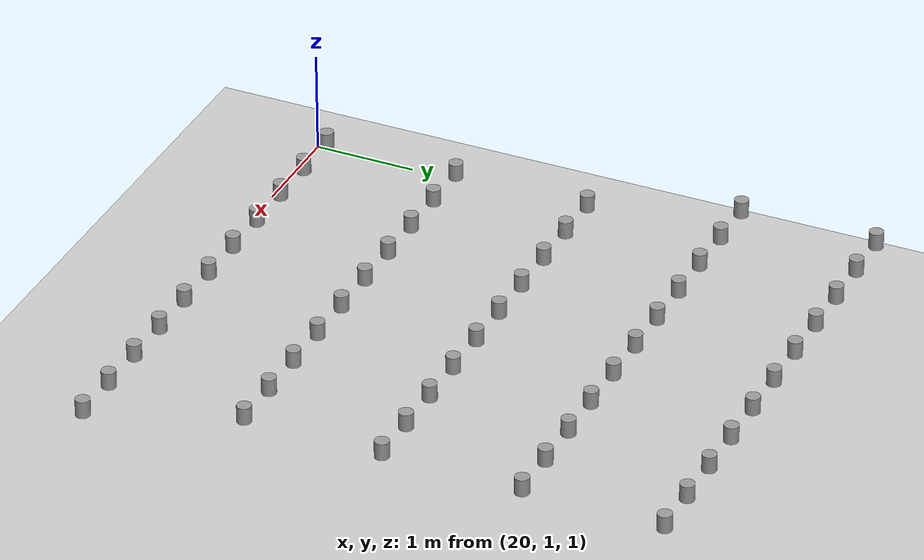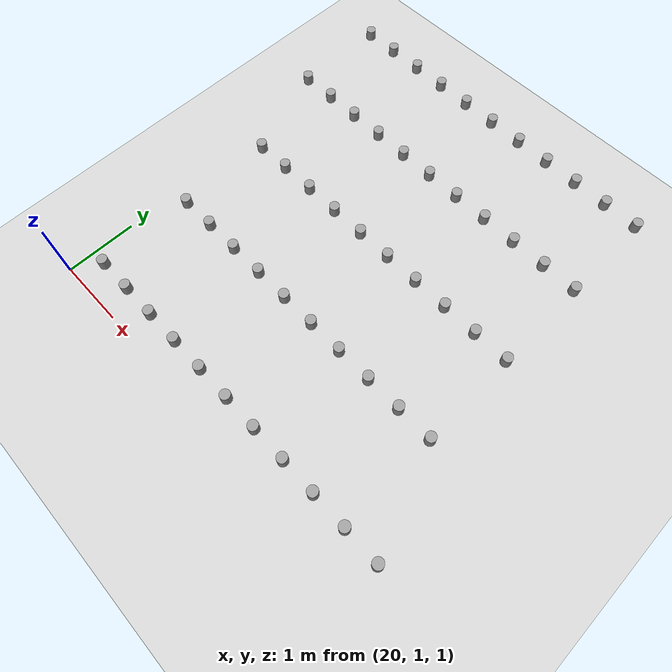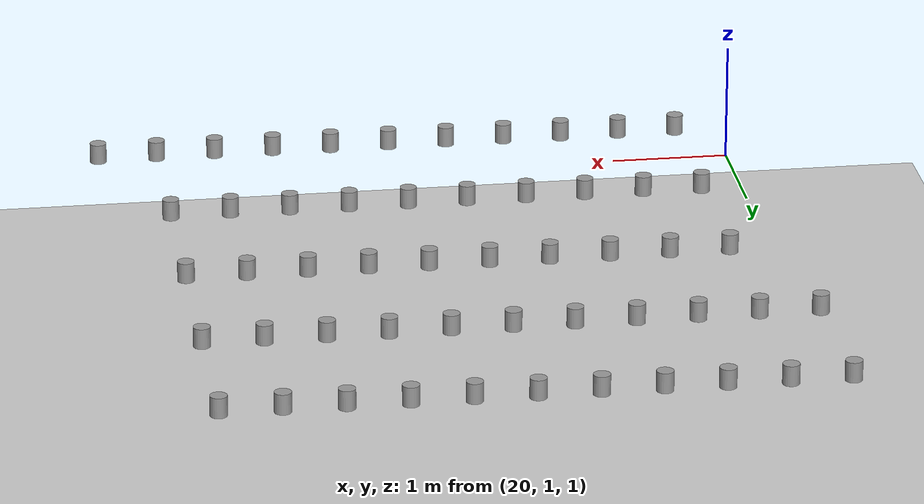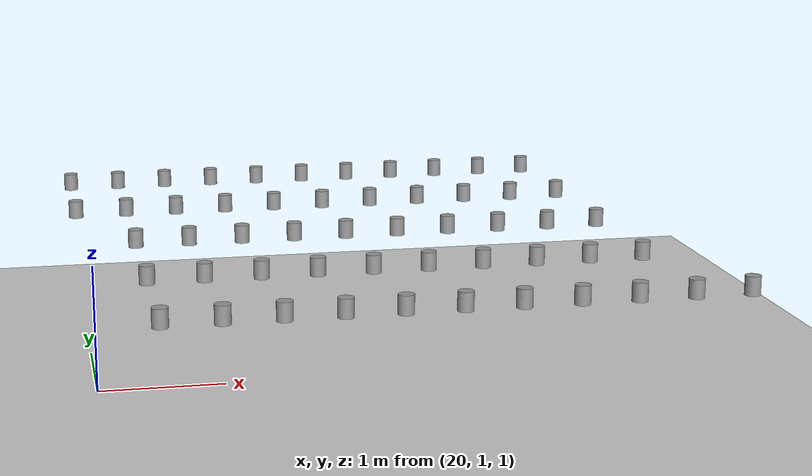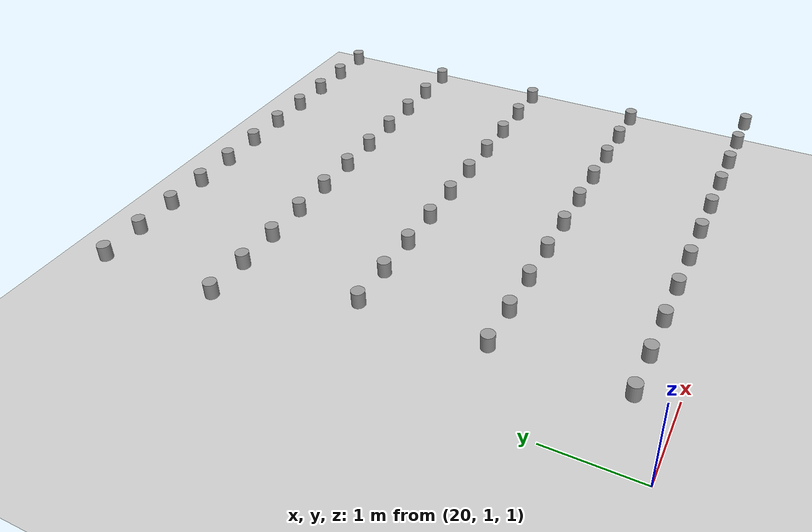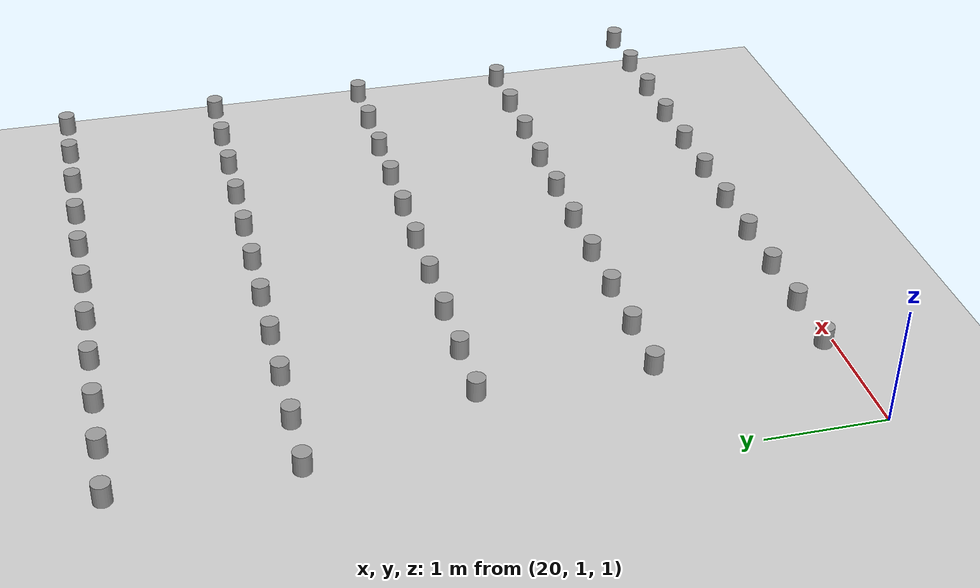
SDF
<sdf version="1.4">
 <world name="default">
  <model name="pot_373">
   <static>1</static>
   <link name="link_0">
    <collision name="collision">
     <geometry><cylinder><length>0.17</length><radius>0.07</radius></cylinder></geometry>
    </collision>
    <visual name="visual">
     <geometry><cylinder><length>0.17</length><radius>0.07</radius></cylinder></geometry>
     <material>
      <script><uri>file://media/materials/scripts/gazebo.material</uri><name>Gazebo/Grey</name></script>
      <emissive>0 0 0 1</emissive>
      <shader type="vertex"><normal_map>__default__</normal_map></shader>
      <specular>0.01 0.01 0.01 1</specular>
      <lighting>1</lighting>
      <ambient>0.1 0.1 0.1 1</ambient>
      <diffuse>0.05 0.05 0.05 1</diffuse>
     </material>
     <cast_shadows>0</cast_shadows>
    </visual>
    <pose>20.024 5.400 1.467 0.0 0.0 0.0</pose>
   </link>
  </model>
  <model name="pot_374">
   <static>1</static>
   <link name="link_0">
    <collision name="collision">
     <geometry><cylinder><length>0.17</length><radius>0.07</radius></cylinder></geometry>
    </collision>
    <visual name="visual">
     <geometry><cylinder><length>0.17</length><radius>0.07</radius></cylinder></geometry>
     <material>
      <script><uri>file://media/materials/scripts/gazebo.material</uri><name>Gazebo/Grey</name></script>
      <emissive>0 0 0 1</emissive>
      <shader type="vertex"><normal_map>__default__</normal_map></shader>
      <specular>0.01 0.01 0.01 1</specular>
      <lighting>1</lighting>
      <ambient>0.1 0.1 0.1 1</ambient>
      <diffuse>0.05 0.05 0.05 1</diffuse>
     </material>
     <cast_shadows>0</cast_shadows>
    </visual>
    <pose>20.024 6.750 1.467 0.0 0.0 0.0</pose>
   </link>
  </model>
  <model name="pot_375">
   <static>1</static>
   <link name="link_0">
    <collision name="collision">
     <geometry><cylinder><length>0.17</length><radius>0.07</radius></cylinder></geometry>
    </collision>
    <visual name="visual">
     <geometry><cylinder><length>0.17</length><radius>0.07</radius></cylinder></geometry>
     <material>
      <script><uri>file://media/materials/scripts/gazebo.material</uri><name>Gazebo/Grey</name></script>
      <emissive>0 0 0 1</emissive>
      <shader type="vertex"><normal_map>__default__</normal_map></shader>
      <specular>0.01 0.01 0.01 1</specular>
      <lighting>1</lighting>
      <ambient>0.1 0.1 0.1 1</ambient>
      <diffuse>0.05 0.05 0.05 1</diffuse>
     </material>
     <cast_shadows>0</cast_shadows>
    </visual>
    <pose>20.524 1.350 1.467 0.0 0.0 0.0</pose>
   </link>
  </model>
  <model name="pot_376">
   <static>1</static>
   <link name="link_0">
    <collision name="collision">
     <geometry><cylinder><length>0.17</length><radius>0.07</radius></cylinder></geometry>
    </collision>
    <visual name="visual">
     <geometry><cylinder><length>0.17</length><radius>0.07</radius></cylinder></geometry>
     <material>
      <script><uri>file://media/materials/scripts/gazebo.material</uri><name>Gazebo/Grey</name></script>
      <emissive>0 0 0 1</emissive>
      <shader type="vertex"><normal_map>__default__</normal_map></shader>
      <specular>0.01 0.01 0.01 1</specular>
      <lighting>1</lighting>
      <ambient>0.1 0.1 0.1 1</ambient>
      <diffuse>0.05 0.05 0.05 1</diffuse>
     </material>
     <cast_shadows>0</cast_shadows>
    </visual>
    <pose>20.524 2.700 1.467 0.0 0.0 0.0</pose>
   </link>
  </model>
  <model name="pot_377">
   <static>1</static>
   <link name="link_0">
    <collision name="collision">
     <geometry><cylinder><length>0.17</length><radius>0.07</radius></cylinder></geometry>
    </collision>
    <visual name="visual">
     <geometry><cylinder><length>0.17</length><radius>0.07</radius></cylinder></geometry>
     <material>
      <script><uri>file://media/materials/scripts/gazebo.material</uri><name>Gazebo/Grey</name></script>
      <emissive>0 0 0 1</emissive>
      <shader type="vertex"><normal_map>__default__</normal_map></shader>
      <specular>0.01 0.01 0.01 1</specular>
      <lighting>1</lighting>
      <ambient>0.1 0.1 0.1 1</ambient>
      <diffuse>0.05 0.05 0.05 1</diffuse>
     </material>
     <cast_shadows>0</cast_shadows>
    </visual>
    <pose>20.524 4.050 1.467 0.0 0.0 0.0</pose>
   </link>
  </model>
  <model name="pot_378">
   <static>1</static>
   <link name="link_0">
    <collision name="collision">
     <geometry><cylinder><length>0.17</length><radius>0.07</radius></cylinder></geometry>
    </collision>
    <visual name="visual">
     <geometry><cylinder><length>0.17</length><radius>0.07</radius></cylinder></geometry>
     <material>
      <script><uri>file://media/materials/scripts/gazebo.material</uri><name>Gazebo/Grey</name></script>
      <emissive>0 0 0 1</emissive>
      <shader type="vertex"><normal_map>__default__</normal_map></shader>
      <specular>0.01 0.01 0.01 1</specular>
      <lighting>1</lighting>
      <ambient>0.1 0.1 0.1 1</ambient>
      <diffuse>0.05 0.05 0.05 1</diffuse>
     </material>
     <cast_shadows>0</cast_shadows>
    </visual>
    <pose>20.524 5.400 1.467 0.0 0.0 0.0</pose>
   </link>
  </model>
  <model name="pot_379">
   <static>1</static>
   <link name="link_0">
    <collision name="collision">
     <geometry><cylinder><length>0.17</length><radius>0.07</radius></cylinder></geometry>
    </collision>
    <visual name="visual">
     <geometry><cylinder><length>0.17</length><radius>0.07</radius></cylinder></geometry>
     <material>
      <script><uri>file://media/materials/scripts/gazebo.material</uri><name>Gazebo/Grey</name></script>
      <emissive>0 0 0 1</emissive>
      <shader type="vertex"><normal_map>__default__</normal_map></shader>
      <specular>0.01 0.01 0.01 1</specular>
      <lighting>1</lighting>
      <ambient>0.1 0.1 0.1 1</ambient>
      <diffuse>0.05 0.05 0.05 1</diffuse>
     </material>
     <cast_shadows>0</cast_shadows>
    </visual>
    <pose>20.524 6.750 1.467 0.0 0.0 0.0</pose>
   </link>
  </model>
  <model name="pot_380">
   <static>1</static>
   <link name="link_0">
    <collision name="collision">
     <geometry><cylinder><length>0.17</length><radius>0.07</radius></cylinder></geometry>
    </collision>
    <visual name="visual">
     <geometry><cylinder><length>0.17</length><radius>0.07</radius></cylinder></geometry>
     <material>
      <script><uri>file://media/materials/scripts/gazebo.material</uri><name>Gazebo/Grey</name></script>
      <emissive>0 0 0 1</emissive>
      <shader type="vertex"><normal_map>__default__</normal_map></shader>
      <specular>0.01 0.01 0.01 1</specular>
      <lighting>1</lighting>
      <ambient>0.1 0.1 0.1 1</ambient>
      <diffuse>0.05 0.05 0.05 1</diffuse>
     </material>
     <cast_shadows>0</cast_shadows>
    </visual>
    <pose>21.024 1.350 1.467 0.0 0.0 0.0</pose>
   </link>
  </model>
  <model name="pot_381">
   <static>1</static>
   <link name="link_0">
    <collision name="collision">
     <geometry><cylinder><length>0.17</length><radius>0.07</radius></cylinder></geometry>
    </collision>
    <visual name="visual">
     <geometry><cylinder><length>0.17</length><radius>0.07</radius></cylinder></geometry>
     <material>
      <script><uri>file://media/materials/scripts/gazebo.material</uri><name>Gazebo/Grey</name></script>
      <emissive>0 0 0 1</emissive>
      <shader type="vertex"><normal_map>__default__</normal_map></shader>
      <specular>0.01 0.01 0.01 1</specular>
      <lighting>1</lighting>
      <ambient>0.1 0.1 0.1 1</ambient>
      <diffuse>0.05 0.05 0.05 1</diffuse>
     </material>
     <cast_shadows>0</cast_shadows>
    </visual>
    <pose>21.024 2.700 1.467 0.0 0.0 0.0</pose>
   </link>
  </model>
  <model name="pot_382">
   <static>1</static>
   <link name="link_0">
    <collision name="collision">
     <geometry><cylinder><length>0.17</length><radius>0.07</radius></cylinder></geometry>
    </collision>
    <visual name="visual">
     <geometry><cylinder><length>0.17</length><radius>0.07</radius></cylinder></geometry>
     <material>
      <script><uri>file://media/materials/scripts/gazebo.material</uri><name>Gazebo/Grey</name></script>
      <emissive>0 0 0 1</emissive>
      <shader type="vertex"><normal_map>__default__</normal_map></shader>
      <specular>0.01 0.01 0.01 1</specular>
      <lighting>1</lighting>
      <ambient>0.1 0.1 0.1 1</ambient>
      <diffuse>0.05 0.05 0.05 1</diffuse>
     </material>
     <cast_shadows>0</cast_shadows>
    </visual>
    <pose>21.024 4.050 1.467 0.0 0.0 0.0</pose>
   </link>
  </model>
  <model name="pot_383">
   <static>1</static>
   <link name="link_0">
    <collision name="collision">
     <geometry><cylinder><length>0.17</length><radius>0.07</radius></cylinder></geometry>
    </collision>
    <visual name="visual">
     <geometry><cylinder><length>0.17</length><radius>0.07</radius></cylinder></geometry>
     <material>
      <script><uri>file://media/materials/scripts/gazebo.material</uri><name>Gazebo/Grey</name></script>
      <emissive>0 0 0 1</emissive>
      <shader type="vertex"><normal_map>__default__</normal_map></shader>
      <specular>0.01 0.01 0.01 1</specular>
      <lighting>1</lighting>
      <ambient>0.1 0.1 0.1 1</ambient>
      <diffuse>0.05 0.05 0.05 1</diffuse>
     </material>
     <cast_shadows>0</cast_shadows>
    </visual>
    <pose>21.024 5.400 1.467 0.0 0.0 0.0</pose>
   </link>
  </model>
  <model name="pot_384">
   <static>1</static>
   <link name="link_0">
    <collision name="collision">
     <geometry><cylinder><length>0.17</length><radius>0.07</radius></cylinder></geometry>
    </collision>
    <visual name="visual">
     <geometry><cylinder><length>0.17</length><radius>0.07</radius></cylinder></geometry>
     <material>
      <script><uri>file://media/materials/scripts/gazebo.material</uri><name>Gazebo/Grey</name></script>
      <emissive>0 0 0 1</emissive>
      <shader type="vertex"><normal_map>__default__</normal_map></shader>
      <specular>0.01 0.01 0.01 1</specular>
      <lighting>1</lighting>
      <ambient>0.1 0.1 0.1 1</ambient>
      <diffuse>0.05 0.05 0.05 1</diffuse>
     </material>
     <cast_shadows>0</cast_shadows>
    </visual>
    <pose>21.024 6.750 1.467 0.0 0.0 0.0</pose>
   </link>
  </model>
  <model name="pot_385">
   <static>1</static>
   <link name="link_0">
    <collision name="collision">
     <geometry><cylinder><length>0.17</length><radius>0.07</radius></cylinder></geometry>
    </collision>
    <visual name="visual">
     <geometry><cylinder><length>0.17</length><radius>0.07</radius></cylinder></geometry>
     <material>
      <script><uri>file://media/materials/scripts/gazebo.material</uri><name>Gazebo/Grey</name></script>
      <emissive>0 0 0 1</emissive>
      <shader type="vertex"><normal_map>__default__</normal_map></shader>
      <specular>0.01 0.01 0.01 1</specular>
      <lighting>1</lighting>
      <ambient>0.1 0.1 0.1 1</ambient>
      <diffuse>0.05 0.05 0.05 1</diffuse>
     </material>
     <cast_shadows>0</cast_shadows>
    </visual>
    <pose>21.524 1.350 1.467 0.0 0.0 0.0</pose>
   </link>
  </model>
  <model name="pot_386">
   <static>1</static>
   <link name="link_0">
    <collision name="collision">
     <geometry><cylinder><length>0.17</length><radius>0.07</radius></cylinder></geometry>
    </collision>
    <visual name="visual">
     <geometry><cylinder><length>0.17</length><radius>0.07</radius></cylinder></geometry>
     <material>
      <script><uri>file://media/materials/scripts/gazebo.material</uri><name>Gazebo/Grey</name></script>
      <emissive>0 0 0 1</emissive>
      <shader type="vertex"><normal_map>__default__</normal_map></shader>
      <specular>0.01 0.01 0.01 1</specular>
      <lighting>1</lighting>
      <ambient>0.1 0.1 0.1 1</ambient>
      <diffuse>0.05 0.05 0.05 1</diffuse>
     </material>
     <cast_shadows>0</cast_shadows>
    </visual>
    <pose>21.524 2.700 1.467 0.0 0.0 0.0</pose>
   </link>
  </model>
  <model name="pot_387">
   <static>1</static>
   <link name="link_0">
    <collision name="collision">
     <geometry><cylinder><length>0.17</length><radius>0.07</radius></cylinder></geometry>
    </collision>
    <visual name="visual">
     <geometry><cylinder><length>0.17</length><radius>0.07</radius></cylinder></geometry>
     <material>
      <script><uri>file://media/materials/scripts/gazebo.material</uri><name>Gazebo/Grey</name></script>
      <emissive>0 0 0 1</emissive>
      <shader type="vertex"><normal_map>__default__</normal_map></shader>
      <specular>0.01 0.01 0.01 1</specular>
      <lighting>1</lighting>
      <ambient>0.1 0.1 0.1 1</ambient>
      <diffuse>0.05 0.05 0.05 1</diffuse>
     </material>
     <cast_shadows>0</cast_shadows>
    </visual>
    <pose>21.524 4.050 1.467 0.0 0.0 0.0</pose>
   </link>
  </model>
  <model name="pot_388">
   <static>1</static>
   <link name="link_0">
    <collision name="collision">
     <geometry><cylinder><length>0.17</length><radius>0.07</radius></cylinder></geometry>
    </collision>
    <visual name="visual">
     <geometry><cylinder><length>0.17</length><radius>0.07</radius></cylinder></geometry>
     <material>
      <script><uri>file://media/materials/scripts/gazebo.material</uri><name>Gazebo/Grey</name></script>
      <emissive>0 0 0 1</emissive>
      <shader type="vertex"><normal_map>__default__</normal_map></shader>
      <specular>0.01 0.01 0.01 1</specular>
      <lighting>1</lighting>
      <ambient>0.1 0.1 0.1 1</ambient>
      <diffuse>0.05 0.05 0.05 1</diffuse>
     </material>
     <cast_shadows>0</cast_shadows>
    </visual>
    <pose>21.524 5.400 1.467 0.0 0.0 0.0</pose>
   </link>
  </model>
  <model name="pot_389">
   <static>1</static>
   <link name="link_0">
    <collision name="collision">
     <geometry><cylinder><length>0.17</length><radius>0.07</radius></cylinder></geometry>
    </collision>
    <visual name="visual">
     <geometry><cylinder><length>0.17</length><radius>0.07</radius></cylinder></geometry>
     <material>
      <script><uri>file://media/materials/scripts/gazebo.material</uri><name>Gazebo/Grey</name></script>
      <emissive>0 0 0 1</emissive>
      <shader type="vertex"><normal_map>__default__</normal_map></shader>
      <specular>0.01 0.01 0.01 1</specular>
      <lighting>1</lighting>
      <ambient>0.1 0.1 0.1 1</ambient>
      <diffuse>0.05 0.05 0.05 1</diffuse>
     </material>
     <cast_shadows>0</cast_shadows>
    </visual>
    <pose>21.524 6.750 1.467 0.0 0.0 0.0</pose>
   </link>
  </model>
  <model name="pot_390">
   <static>1</static>
   <link name="link_0">
    <collision name="collision">
     <geometry><cylinder><length>0.17</length><radius>0.07</radius></cylinder></geometry>
    </collision>
    <visual name="visual">
     <geometry><cylinder><length>0.17</length><radius>0.07</radius></cylinder></geometry>
     <material>
      <script><uri>file://media/materials/scripts/gazebo.material</uri><name>Gazebo/Grey</name></script>
      <emissive>0 0 0 1</emissive>
      <shader type="vertex"><normal_map>__default__</normal_map></shader>
      <specular>0.01 0.01 0.01 1</specular>
      <lighting>1</lighting>
      <ambient>0.1 0.1 0.1 1</ambient>
      <diffuse>0.05 0.05 0.05 1</diffuse>
     </material>
     <cast_shadows>0</cast_shadows>
    </visual>
    <pose>22.024 1.350 1.467 0.0 0.0 0.0</pose>
   </link>
  </model>
  <model name="pot_391">
   <static>1</static>
   <link name="link_0">
    <collision name="collision">
     <geometry><cylinder><length>0.17</length><radius>0.07</radius></cylinder></geometry>
    </collision>
    <visual name="visual">
     <geometry><cylinder><length>0.17</length><radius>0.07</radius></cylinder></geometry>
     <material>
      <script><uri>file://media/materials/scripts/gazebo.material</uri><name>Gazebo/Grey</name></script>
      <emissive>0 0 0 1</emissive>
      <shader type="vertex"><normal_map>__default__</normal_map></shader>
      <specular>0.01 0.01 0.01 1</specular>
      <lighting>1</lighting>
      <ambient>0.1 0.1 0.1 1</ambient>
      <diffuse>0.05 0.05 0.05 1</diffuse>
     </material>
     <cast_shadows>0</cast_shadows>
    </visual>
    <pose>22.024 2.700 1.467 0.0 0.0 0.0</pose>
   </link>
  </model>
  <model name="pot_392">
   <static>1</static>
   <link name="link_0">
    <collision name="collision">
     <geometry><cylinder><length>0.17</length><radius>0.07</radius></cylinder></geometry>
    </collision>
    <visual name="visual">
     <geometry><cylinder><length>0.17</length><radius>0.07</radius></cylinder></geometry>
     <material>
      <script><uri>file://media/materials/scripts/gazebo.material</uri><name>Gazebo/Grey</name></script>
      <emissive>0 0 0 1</emissive>
      <shader type="vertex"><normal_map>__default__</normal_map></shader>
      <specular>0.01 0.01 0.01 1</specular>
      <lighting>1</lighting>
      <ambient>0.1 0.1 0.1 1</ambient>
      <diffuse>0.05 0.05 0.05 1</diffuse>
     </material>
     <cast_shadows>0</cast_shadows>
    </visual>
    <pose>22.024 4.050 1.467 0.0 0.0 0.0</pose>
   </link>
  </model>
  <model name="pot_393">
   <static>1</static>
   <link name="link_0">
    <collision name="collision">
     <geometry><cylinder><length>0.17</length><radius>0.07</radius></cylinder></geometry>
    </collision>
    <visual name="visual">
     <geometry><cylinder><length>0.17</length><radius>0.07</radius></cylinder></geometry>
     <material>
      <script><uri>file://media/materials/scripts/gazebo.material</uri><name>Gazebo/Grey</name></script>
      <emissive>0 0 0 1</emissive>
      <shader type="vertex"><normal_map>__default__</normal_map></shader>
      <specular>0.01 0.01 0.01 1</specular>
      <lighting>1</lighting>
      <ambient>0.1 0.1 0.1 1</ambient>
      <diffuse>0.05 0.05 0.05 1</diffuse>
     </material>
     <cast_shadows>0</cast_shadows>
    </visual>
    <pose>22.024 5.400 1.467 0.0 0.0 0.0</pose>
   </link>
  </model>
  <model name="pot_394">
   <static>1</static>
   <link name="link_0">
    <collision name="collision">
     <geometry><cylinder><length>0.17</length><radius>0.07</radius></cylinder></geometry>
    </collision>
    <visual name="visual">
     <geometry><cylinder><length>0.17</length><radius>0.07</radius></cylinder></geometry>
     <material>
      <script><uri>file://media/materials/scripts/gazebo.material</uri><name>Gazebo/Grey</name></script>
      <emissive>0 0 0 1</emissive>
      <shader type="vertex"><normal_map>__default__</normal_map></shader>
      <specular>0.01 0.01 0.01 1</specular>
      <lighting>1</lighting>
      <ambient>0.1 0.1 0.1 1</ambient>
      <diffuse>0.05 0.05 0.05 1</diffuse>
     </material>
     <cast_shadows>0</cast_shadows>
    </visual>
    <pose>22.024 6.750 1.467 0.0 0.0 0.0</pose>
   </link>
  </model>
  <model name="pot_395">
   <static>1</static>
   <link name="link_0">
    <collision name="collision">
     <geometry><cylinder><length>0.17</length><radius>0.07</radius></cylinder></geometry>
    </collision>
    <visual name="visual">
     <geometry><cylinder><length>0.17</length><radius>0.07</radius></cylinder></geometry>
     <material>
      <script><uri>file://media/materials/scripts/gazebo.material</uri><name>Gazebo/Grey</name></script>
      <emissive>0 0 0 1</emissive>
      <shader type="vertex"><normal_map>__default__</normal_map></shader>
      <specular>0.01 0.01 0.01 1</specular>
      <lighting>1</lighting>
      <ambient>0.1 0.1 0.1 1</ambient>
      <diffuse>0.05 0.05 0.05 1</diffuse>
     </material>
     <cast_shadows>0</cast_shadows>
    </visual>
    <pose>22.524 1.350 1.467 0.0 0.0 0.0</pose>
   </link>
  </model>
  <model name="pot_396">
   <static>1</static>
   <link name="link_0">
    <collision name="collision">
     <geometry><cylinder><length>0.17</length><radius>0.07</radius></cylinder></geometry>
    </collision>
    <visual name="visual">
     <geometry><cylinder><length>0.17</length><radius>0.07</radius></cylinder></geometry>
     <material>
      <script><uri>file://media/materials/scripts/gazebo.material</uri><name>Gazebo/Grey</name></script>
      <emissive>0 0 0 1</emissive>
      <shader type="vertex"><normal_map>__default__</normal_map></shader>
      <specular>0.01 0.01 0.01 1</specular>
      <lighting>1</lighting>
      <ambient>0.1 0.1 0.1 1</ambient>
      <diffuse>0.05 0.05 0.05 1</diffuse>
     </material>
     <cast_shadows>0</cast_shadows>
    </visual>
    <pose>22.524 2.700 1.467 0.0 0.0 0.0</pose>
   </link>
  </model>
  <model name="pot_397">
   <static>1</static>
   <link name="link_0">
    <collision name="collision">
     <geometry><cylinder><length>0.17</length><radius>0.07</radius></cylinder></geometry>
    </collision>
    <visual name="visual">
     <geometry><cylinder><length>0.17</length><radius>0.07</radius></cylinder></geometry>
     <material>
      <script><uri>file://media/materials/scripts/gazebo.material</uri><name>Gazebo/Grey</name></script>
      <emissive>0 0 0 1</emissive>
      <shader type="vertex"><normal_map>__default__</normal_map></shader>
      <specular>0.01 0.01 0.01 1</specular>
      <lighting>1</lighting>
      <ambient>0.1 0.1 0.1 1</ambient>
      <diffuse>0.05 0.05 0.05 1</diffuse>
     </material>
     <cast_shadows>0</cast_shadows>
    </visual>
    <pose>22.524 4.050 1.467 0.0 0.0 0.0</pose>
   </link>
  </model>
  <model name="pot_398">
   <static>1</static>
   <link name="link_0">
    <collision name="collision">
     <geometry><cylinder><length>0.17</length><radius>0.07</radius></cylinder></geometry>
    </collision>
    <visual name="visual">
     <geometry><cylinder><length>0.17</length><radius>0.07</radius></cylinder></geometry>
     <material>
      <script><uri>file://media/materials/scripts/gazebo.material</uri><name>Gazebo/Grey</name></script>
      <emissive>0 0 0 1</emissive>
      <shader type="vertex"><normal_map>__default__</normal_map></shader>
      <specular>0.01 0.01 0.01 1</specular>
      <lighting>1</lighting>
      <ambient>0.1 0.1 0.1 1</ambient>
      <diffuse>0.05 0.05 0.05 1</diffuse>
     </material>
     <cast_shadows>0</cast_shadows>
    </visual>
    <pose>22.524 5.400 1.467 0.0 0.0 0.0</pose>
   </link>
  </model>
  <model name="pot_399">
   <static>1</static>
   <link name="link_0">
    <collision name="collision">
     <geometry><cylinder><length>0.17</length><radius>0.07</radius></cylinder></geometry>
    </collision>
    <visual name="visual">
     <geometry><cylinder><length>0.17</length><radius>0.07</radius></cylinder></geometry>
     <material>
      <script><uri>file://media/materials/scripts/gazebo.material</uri><name>Gazebo/Grey</name></script>
      <emissive>0 0 0 1</emissive>
      <shader type="vertex"><normal_map>__default__</normal_map></shader>
      <specular>0.01 0.01 0.01 1</specular>
      <lighting>1</lighting>
      <ambient>0.1 0.1 0.1 1</ambient>
      <diffuse>0.05 0.05 0.05 1</diffuse>
     </material>
     <cast_shadows>0</cast_shadows>
    </visual>
    <pose>22.524 6.750 1.467 0.0 0.0 0.0</pose>
   </link>
  </model>
  <model name="pot_400">
   <static>1</static>
   <link name="link_0">
    <collision name="collision">
     <geometry><cylinder><length>0.17</length><radius>0.07</radius></cylinder></geometry>
    </collision>
    <visual name="visual">
     <geometry><cylinder><length>0.17</length><radius>0.07</radius></cylinder></geometry>
     <material>
      <script><uri>file://media/materials/scripts/gazebo.material</uri><name>Gazebo/Grey</name></script>
      <emissive>0 0 0 1</emissive>
      <shader type="vertex"><normal_map>__default__</normal_map></shader>
      <specular>0.01 0.01 0.01 1</specular>
      <lighting>1</lighting>
      <ambient>0.1 0.1 0.1 1</ambient>
      <diffuse>0.05 0.05 0.05 1</diffuse>
     </material>
     <cast_shadows>0</cast_shadows>
    </visual>
    <pose>23.024 1.350 1.467 0.0 0.0 0.0</pose>
   </link>
  </model>
  <model name="pot_401">
   <static>1</static>
   <link name="link_0">
    <collision name="collision">
     <geometry><cylinder><length>0.17</length><radius>0.07</radius></cylinder></geometry>
    </collision>
    <visual name="visual">
     <geometry><cylinder><length>0.17</length><radius>0.07</radius></cylinder></geometry>
     <material>
      <script><uri>file://media/materials/scripts/gazebo.material</uri><name>Gazebo/Grey</name></script>
      <emissive>0 0 0 1</emissive>
      <shader type="vertex"><normal_map>__default__</normal_map></shader>
      <specular>0.01 0.01 0.01 1</specular>
      <lighting>1</lighting>
      <ambient>0.1 0.1 0.1 1</ambient>
      <diffuse>0.05 0.05 0.05 1</diffuse>
     </material>
     <cast_shadows>0</cast_shadows>
    </visual>
    <pose>23.024 2.700 1.467 0.0 0.0 0.0</pose>
   </link>
  </model>
  <model name="pot_402">
   <static>1</static>
   <link name="link_0">
    <collision name="collision">
     <geometry><cylinder><length>0.17</length><radius>0.07</radius></cylinder></geometry>
    </collision>
    <visual name="visual">
     <geometry><cylinder><length>0.17</length><radius>0.07</radius></cylinder></geometry>
     <material>
      <script><uri>file://media/materials/scripts/gazebo.material</uri><name>Gazebo/Grey</name></script>
      <emissive>0 0 0 1</emissive>
      <shader type="vertex"><normal_map>__default__</normal_map></shader>
      <specular>0.01 0.01 0.01 1</specular>
      <lighting>1</lighting>
      <ambient>0.1 0.1 0.1 1</ambient>
      <diffuse>0.05 0.05 0.05 1</diffuse>
     </material>
     <cast_shadows>0</cast_shadows>
    </visual>
    <pose>23.024 4.050 1.467 0.0 0.0 0.0</pose>
   </link>
  </model>
  <model name="pot_403">
   <static>1</static>
   <link name="link_0">
    <collision name="collision">
     <geometry><cylinder><length>0.17</length><radius>0.07</radius></cylinder></geometry>
    </collision>
    <visual name="visual">
     <geometry><cylinder><length>0.17</length><radius>0.07</radius></cylinder></geometry>
     <material>
      <script><uri>file://media/materials/scripts/gazebo.material</uri><name>Gazebo/Grey</name></script>
      <emissive>0 0 0 1</emissive>
      <shader type="vertex"><normal_map>__default__</normal_map></shader>
      <specular>0.01 0.01 0.01 1</specular>
      <lighting>1</lighting>
      <ambient>0.1 0.1 0.1 1</ambient>
      <diffuse>0.05 0.05 0.05 1</diffuse>
     </material>
     <cast_shadows>0</cast_shadows>
    </visual>
    <pose>23.024 5.400 1.467 0.0 0.0 0.0</pose>
   </link>
  </model>
  <model name="pot_404">
   <static>1</static>
   <link name="link_0">
    <collision name="collision">
     <geometry><cylinder><length>0.17</length><radius>0.07</radius></cylinder></geometry>
    </collision>
    <visual name="visual">
     <geometry><cylinder><length>0.17</length><radius>0.07</radius></cylinder></geometry>
     <material>
      <script><uri>file://media/materials/scripts/gazebo.material</uri><name>Gazebo/Grey</name></script>
      <emissive>0 0 0 1</emissive>
      <shader type="vertex"><normal_map>__default__</normal_map></shader>
      <specular>0.01 0.01 0.01 1</specular>
      <lighting>1</lighting>
      <ambient>0.1 0.1 0.1 1</ambient>
      <diffuse>0.05 0.05 0.05 1</diffuse>
     </material>
     <cast_shadows>0</cast_shadows>
    </visual>
    <pose>23.024 6.750 1.467 0.0 0.0 0.0</pose>
   </link>
  </model>
  <model name="pot_405">
   <static>1</static>
   <link name="link_0">
    <collision name="collision">
     <geometry><cylinder><length>0.17</length><radius>0.07</radius></cylinder></geometry>
    </collision>
    <visual name="visual">
     <geometry><cylinder><length>0.17</length><radius>0.07</radius></cylinder></geometry>
     <material>
      <script><uri>file://media/materials/scripts/gazebo.material</uri><name>Gazebo/Grey</name></script>
      <emissive>0 0 0 1</emissive>
      <shader type="vertex"><normal_map>__default__</normal_map></shader>
      <specular>0.01 0.01 0.01 1</specular>
      <lighting>1</lighting>
      <ambient>0.1 0.1 0.1 1</ambient>
      <diffuse>0.05 0.05 0.05 1</diffuse>
     </material>
     <cast_shadows>0</cast_shadows>
    </visual>
    <pose>23.524 1.350 1.467 0.0 0.0 0.0</pose>
   </link>
  </model>
  <model name="pot_406">
   <static>1</static>
   <link name="link_0">
    <collision name="collision">
     <geometry><cylinder><length>0.17</length><radius>0.07</radius></cylinder></geometry>
    </collision>
    <visual name="visual">
     <geometry><cylinder><length>0.17</length><radius>0.07</radius></cylinder></geometry>
     <material>
      <script><uri>file://media/materials/scripts/gazebo.material</uri><name>Gazebo/Grey</name></script>
      <emissive>0 0 0 1</emissive>
      <shader type="vertex"><normal_map>__default__</normal_map></shader>
      <specular>0.01 0.01 0.01 1</specular>
      <lighting>1</lighting>
      <ambient>0.1 0.1 0.1 1</ambient>
      <diffuse>0.05 0.05 0.05 1</diffuse>
     </material>
     <cast_shadows>0</cast_shadows>
    </visual>
    <pose>23.524 2.700 1.467 0.0 0.0 0.0</pose>
   </link>
  </model>
  <model name="pot_407">
   <static>1</static>
   <link name="link_0">
    <collision name="collision">
     <geometry><cylinder><length>0.17</length><radius>0.07</radius></cylinder></geometry>
    </collision>
    <visual name="visual">
     <geometry><cylinder><length>0.17</length><radius>0.07</radius></cylinder></geometry>
     <material>
      <script><uri>file://media/materials/scripts/gazebo.material</uri><name>Gazebo/Grey</name></script>
      <emissive>0 0 0 1</emissive>
      <shader type="vertex"><normal_map>__default__</normal_map></shader>
      <specular>0.01 0.01 0.01 1</specular>
      <lighting>1</lighting>
      <ambient>0.1 0.1 0.1 1</ambient>
      <diffuse>0.05 0.05 0.05 1</diffuse>
     </material>
     <cast_shadows>0</cast_shadows>
    </visual>
    <pose>23.524 4.050 1.467 0.0 0.0 0.0</pose>
   </link>
  </model>
  <model name="pot_408">
   <static>1</static>
   <link name="link_0">
    <collision name="collision">
     <geometry><cylinder><length>0.17</length><radius>0.07</radius></cylinder></geometry>
    </collision>
    <visual name="visual">
     <geometry><cylinder><length>0.17</length><radius>0.07</radius></cylinder></geometry>
     <material>
      <script><uri>file://media/materials/scripts/gazebo.material</uri><name>Gazebo/Grey</name></script>
      <emissive>0 0 0 1</emissive>
      <shader type="vertex"><normal_map>__default__</normal_map></shader>
      <specular>0.01 0.01 0.01 1</specular>
      <lighting>1</lighting>
      <ambient>0.1 0.1 0.1 1</ambient>
      <diffuse>0.05 0.05 0.05 1</diffuse>
     </material>
     <cast_shadows>0</cast_shadows>
    </visual>
    <pose>23.524 5.400 1.467 0.0 0.0 0.0</pose>
   </link>
  </model>
  <model name="pot_409">
   <static>1</static>
   <link name="link_0">
    <collision name="collision">
     <geometry><cylinder><length>0.17</length><radius>0.07</radius></cylinder></geometry>
    </collision>
    <visual name="visual">
     <geometry><cylinder><length>0.17</length><radius>0.07</radius></cylinder></geometry>
     <material>
      <script><uri>file://media/materials/scripts/gazebo.material</uri><name>Gazebo/Grey</name></script>
      <emissive>0 0 0 1</emissive>
      <shader type="vertex"><normal_map>__default__</normal_map></shader>
      <specular>0.01 0.01 0.01 1</specular>
      <lighting>1</lighting>
      <ambient>0.1 0.1 0.1 1</ambient>
      <diffuse>0.05 0.05 0.05 1</diffuse>
     </material>
     <cast_shadows>0</cast_shadows>
    </visual>
    <pose>23.524 6.750 1.467 0.0 0.0 0.0</pose>
   </link>
  </model>
  <model name="pot_410">
   <static>1</static>
   <link name="link_0">
    <collision name="collision">
     <geometry><cylinder><length>0.17</length><radius>0.07</radius></cylinder></geometry>
    </collision>
    <visual name="visual">
     <geometry><cylinder><length>0.17</length><radius>0.07</radius></cylinder></geometry>
     <material>
      <script><uri>file://media/materials/scripts/gazebo.material</uri><name>Gazebo/Grey</name></script>
      <emissive>0 0 0 1</emissive>
      <shader type="vertex"><normal_map>__default__</normal_map></shader>
      <specular>0.01 0.01 0.01 1</specular>
      <lighting>1</lighting>
      <ambient>0.1 0.1 0.1 1</ambient>
      <diffuse>0.05 0.05 0.05 1</diffuse>
     </material>
     <cast_shadows>0</cast_shadows>
    </visual>
    <pose>24.024 1.350 1.467 0.0 0.0 0.0</pose>
   </link>
  </model>
  <model name="pot_411">
   <static>1</static>
   <link name="link_0">
    <collision name="collision">
     <geometry><cylinder><length>0.17</length><radius>0.07</radius></cylinder></geometry>
    </collision>
    <visual name="visual">
     <geometry><cylinder><length>0.17</length><radius>0.07</radius></cylinder></geometry>
     <material>
      <script><uri>file://media/materials/scripts/gazebo.material</uri><name>Gazebo/Grey</name></script>
      <emissive>0 0 0 1</emissive>
      <shader type="vertex"><normal_map>__default__</normal_map></shader>
      <specular>0.01 0.01 0.01 1</specular>
      <lighting>1</lighting>
      <ambient>0.1 0.1 0.1 1</ambient>
      <diffuse>0.05 0.05 0.05 1</diffuse>
     </material>
     <cast_shadows>0</cast_shadows>
    </visual>
    <pose>24.024 2.700 1.467 0.0 0.0 0.0</pose>
   </link>
  </model>
  <model name="pot_412">
   <static>1</static>
   <link name="link_0">
    <collision name="collision">
     <geometry><cylinder><length>0.17</length><radius>0.07</radius></cylinder></geometry>
    </collision>
    <visual name="visual">
     <geometry><cylinder><length>0.17</length><radius>0.07</radius></cylinder></geometry>
     <material>
      <script><uri>file://media/materials/scripts/gazebo.material</uri><name>Gazebo/Grey</name></script>
      <emissive>0 0 0 1</emissive>
      <shader type="vertex"><normal_map>__default__</normal_map></shader>
      <specular>0.01 0.01 0.01 1</specular>
      <lighting>1</lighting>
      <ambient>0.1 0.1 0.1 1</ambient>
      <diffuse>0.05 0.05 0.05 1</diffuse>
     </material>
     <cast_shadows>0</cast_shadows>
    </visual>
    <pose>24.024 4.050 1.467 0.0 0.0 0.0</pose>
   </link>
  </model>
  <model name="pot_413">
   <static>1</static>
   <link name="link_0">
    <collision name="collision">
     <geometry><cylinder><length>0.17</length><radius>0.07</radius></cylinder></geometry>
    </collision>
    <visual name="visual">
     <geometry><cylinder><length>0.17</length><radius>0.07</radius></cylinder></geometry>
     <material>
      <script><uri>file://media/materials/scripts/gazebo.material</uri><name>Gazebo/Grey</name></script>
      <emissive>0 0 0 1</emissive>
      <shader type="vertex"><normal_map>__default__</normal_map></shader>
      <specular>0.01 0.01 0.01 1</specular>
      <lighting>1</lighting>
      <ambient>0.1 0.1 0.1 1</ambient>
      <diffuse>0.05 0.05 0.05 1</diffuse>
     </material>
     <cast_shadows>0</cast_shadows>
    </visual>
    <pose>24.024 5.400 1.467 0.0 0.0 0.0</pose>
   </link>
  </model>
  <model name="pot_414">
   <static>1</static>
   <link name="link_0">
    <collision name="collision">
     <geometry><cylinder><length>0.17</length><radius>0.07</radius></cylinder></geometry>
    </collision>
    <visual name="visual">
     <geometry><cylinder><length>0.17</length><radius>0.07</radius></cylinder></geometry>
     <material>
      <script><uri>file://media/materials/scripts/gazebo.material</uri><name>Gazebo/Grey</name></script>
      <emissive>0 0 0 1</emissive>
      <shader type="vertex"><normal_map>__default__</normal_map></shader>
      <specular>0.01 0.01 0.01 1</specular>
      <lighting>1</lighting>
      <ambient>0.1 0.1 0.1 1</ambient>
      <diffuse>0.05 0.05 0.05 1</diffuse>
     </material>
     <cast_shadows>0</cast_shadows>
    </visual>
    <pose>24.024 6.750 1.467 0.0 0.0 0.0</pose>
   </link>
  </model>
  <model name="pot_415">
   <static>1</static>
   <link name="link_0">
    <collision name="collision">
     <geometry><cylinder><length>0.17</length><radius>0.07</radius></cylinder></geometry>
    </collision>
    <visual name="visual">
     <geometry><cylinder><length>0.17</length><radius>0.07</radius></cylinder></geometry>
     <material>
      <script><uri>file://media/materials/scripts/gazebo.material</uri><name>Gazebo/Grey</name></script>
      <emissive>0 0 0 1</emissive>
      <shader type="vertex"><normal_map>__default__</normal_map></shader>
      <specular>0.01 0.01 0.01 1</specular>
      <lighting>1</lighting>
      <ambient>0.1 0.1 0.1 1</ambient>
      <diffuse>0.05 0.05 0.05 1</diffuse>
     </material>
     <cast_shadows>0</cast_shadows>
    </visual>
    <pose>24.524 1.350 1.467 0.0 0.0 0.0</pose>
   </link>
  </model>
  <model name="pot_416">
   <static>1</static>
   <link name="link_0">
    <collision name="collision">
     <geometry><cylinder><length>0.17</length><radius>0.07</radius></cylinder></geometry>
    </collision>
    <visual name="visual">
     <geometry><cylinder><length>0.17</length><radius>0.07</radius></cylinder></geometry>
     <material>
      <script><uri>file://media/materials/scripts/gazebo.material</uri><name>Gazebo/Grey</name></script>
      <emissive>0 0 0 1</emissive>
      <shader type="vertex"><normal_map>__default__</normal_map></shader>
      <specular>0.01 0.01 0.01 1</specular>
      <lighting>1</lighting>
      <ambient>0.1 0.1 0.1 1</ambient>
      <diffuse>0.05 0.05 0.05 1</diffuse>
     </material>
     <cast_shadows>0</cast_shadows>
    </visual>
    <pose>24.524 2.700 1.467 0.0 0.0 0.0</pose>
   </link>
  </model>
  <model name="pot_417">
   <static>1</static>
   <link name="link_0">
    <collision name="collision">
     <geometry><cylinder><length>0.17</length><radius>0.07</radius></cylinder></geometry>
    </collision>
    <visual name="visual">
     <geometry><cylinder><length>0.17</length><radius>0.07</radius></cylinder></geometry>
     <material>
      <script><uri>file://media/materials/scripts/gazebo.material</uri><name>Gazebo/Grey</name></script>
      <emissive>0 0 0 1</emissive>
      <shader type="vertex"><normal_map>__default__</normal_map></shader>
      <specular>0.01 0.01 0.01 1</specular>
      <lighting>1</lighting>
      <ambient>0.1 0.1 0.1 1</ambient>
      <diffuse>0.05 0.05 0.05 1</diffuse>
     </material>
     <cast_shadows>0</cast_shadows>
    </visual>
    <pose>24.524 4.050 1.467 0.0 0.0 0.0</pose>
   </link>
  </model>
  <model name="pot_418">
   <static>1</static>
   <link name="link_0">
    <collision name="collision">
     <geometry><cylinder><length>0.17</length><radius>0.07</radius></cylinder></geometry>
    </collision>
    <visual name="visual">
     <geometry><cylinder><length>0.17</length><radius>0.07</radius></cylinder></geometry>
     <material>
      <script><uri>file://media/materials/scripts/gazebo.material</uri><name>Gazebo/Grey</name></script>
      <emissive>0 0 0 1</emissive>
      <shader type="vertex"><normal_map>__default__</normal_map></shader>
      <specular>0.01 0.01 0.01 1</specular>
      <lighting>1</lighting>
      <ambient>0.1 0.1 0.1 1</ambient>
      <diffuse>0.05 0.05 0.05 1</diffuse>
     </material>
     <cast_shadows>0</cast_shadows>
    </visual>
    <pose>24.524 5.400 1.467 0.0 0.0 0.0</pose>
   </link>
  </model>
  <model name="pot_419">
   <static>1</static>
   <link name="link_0">
    <collision name="collision">
     <geometry><cylinder><length>0.17</length><radius>0.07</radius></cylinder></geometry>
    </collision>
    <visual name="visual">
     <geometry><cylinder><length>0.17</length><radius>0.07</radius></cylinder></geometry>
     <material>
      <script><uri>file://media/materials/scripts/gazebo.material</uri><name>Gazebo/Grey</name></script>
      <emissive>0 0 0 1</emissive>
      <shader type="vertex"><normal_map>__default__</normal_map></shader>
      <specular>0.01 0.01 0.01 1</specular>
      <lighting>1</lighting>
      <ambient>0.1 0.1 0.1 1</ambient>
      <diffuse>0.05 0.05 0.05 1</diffuse>
     </material>
     <cast_shadows>0</cast_shadows>
    </visual>
    <pose>24.524 6.750 1.467 0.0 0.0 0.0</pose>
   </link>
  </model>
  <model name="pot_420">
   <static>1</static>
   <link name="link_0">
    <collision name="collision">
     <geometry><cylinder><length>0.17</length><radius>0.07</radius></cylinder></geometry>
    </collision>
    <visual name="visual">
     <geometry><cylinder><length>0.17</length><radius>0.07</radius></cylinder></geometry>
     <material>
      <script><uri>file://media/materials/scripts/gazebo.material</uri><name>Gazebo/Grey</name></script>
      <emissive>0 0 0 1</emissive>
      <shader type="vertex"><normal_map>__default__</normal_map></shader>
      <specular>0.01 0.01 0.01 1</specular>
      <lighting>1</lighting>
      <ambient>0.1 0.1 0.1 1</ambient>
      <diffuse>0.05 0.05 0.05 1</diffuse>
     </material>
     <cast_shadows>0</cast_shadows>
    </visual>
    <pose>25.024 1.350 1.467 0.0 0.0 0.0</pose>
   </link>
  </model>
  <model name="pot_421">
   <static>1</static>
   <link name="link_0">
    <collision name="collision">
     <geometry><cylinder><length>0.17</length><radius>0.07</radius></cylinder></geometry>
    </collision>
    <visual name="visual">
     <geometry><cylinder><length>0.17</length><radius>0.07</radius></cylinder></geometry>
     <material>
      <script><uri>file://media/materials/scripts/gazebo.material</uri><name>Gazebo/Grey</name></script>
      <emissive>0 0 0 1</emissive>
      <shader type="vertex"><normal_map>__default__</normal_map></shader>
      <specular>0.01 0.01 0.01 1</specular>
      <lighting>1</lighting>
      <ambient>0.1 0.1 0.1 1</ambient>
      <diffuse>0.05 0.05 0.05 1</diffuse>
     </material>
     <cast_shadows>0</cast_shadows>
    </visual>
    <pose>25.024 2.700 1.467 0.0 0.0 0.0</pose>
   </link>
  </model>
  <model name="pot_422">
   <static>1</static>
   <link name="link_0">
    <collision name="collision">
     <geometry><cylinder><length>0.17</length><radius>0.07</radius></cylinder></geometry>
    </collision>
    <visual name="visual">
     <geometry><cylinder><length>0.17</length><radius>0.07</radius></cylinder></geometry>
     <material>
      <script><uri>file://media/materials/scripts/gazebo.material</uri><name>Gazebo/Grey</name></script>
      <emissive>0 0 0 1</emissive>
      <shader type="vertex"><normal_map>__default__</normal_map></shader>
      <specular>0.01 0.01 0.01 1</specular>
      <lighting>1</lighting>
      <ambient>0.1 0.1 0.1 1</ambient>
      <diffuse>0.05 0.05 0.05 1</diffuse>
     </material>
     <cast_shadows>0</cast_shadows>
    </visual>
    <pose>25.024 4.050 1.467 0.0 0.0 0.0</pose>
   </link>
  </model>
  <model name="pot_423">
   <static>1</static>
   <link name="link_0">
    <collision name="collision">
     <geometry><cylinder><length>0.17</length><radius>0.07</radius></cylinder></geometry>
    </collision>
    <visual name="visual">
     <geometry><cylinder><length>0.17</length><radius>0.07</radius></cylinder></geometry>
     <material>
      <script><uri>file://media/materials/scripts/gazebo.material</uri><name>Gazebo/Grey</name></script>
      <emissive>0 0 0 1</emissive>
      <shader type="vertex"><normal_map>__default__</normal_map></shader>
      <specular>0.01 0.01 0.01 1</specular>
      <lighting>1</lighting>
      <ambient>0.1 0.1 0.1 1</ambient>
      <diffuse>0.05 0.05 0.05 1</diffuse>
     </material>
     <cast_shadows>0</cast_shadows>
    </visual>
    <pose>25.024 5.400 1.467 0.0 0.0 0.0</pose>
   </link>
  </model>
  <model name="pot_424">
   <static>1</static>
   <link name="link_0">
    <collision name="collision">
     <geometry><cylinder><length>0.17</length><radius>0.07</radius></cylinder></geometry>
    </collision>
    <visual name="visual">
     <geometry><cylinder><length>0.17</length><radius>0.07</radius></cylinder></geometry>
     <material>
      <script><uri>file://media/materials/scripts/gazebo.material</uri><name>Gazebo/Grey</name></script>
      <emissive>0 0 0 1</emissive>
      <shader type="vertex"><normal_map>__default__</normal_map></shader>
      <specular>0.01 0.01 0.01 1</specular>
      <lighting>1</lighting>
      <ambient>0.1 0.1 0.1 1</ambient>
      <diffuse>0.05 0.05 0.05 1</diffuse>
     </material>
     <cast_shadows>0</cast_shadows>
    </visual>
    <pose>25.024 6.750 1.467 0.0 0.0 0.0</pose>
   </link>
  </model>
  <model name="pot_425">
   <static>1</static>
   <link name="link_0">
    <collision name="collision">
     <geometry><cylinder><length>0.17</length><radius>0.07</radius></cylinder></geometry>
    </collision>
    <visual name="visual">
     <geometry><cylinder><length>0.17</length><radius>0.07</radius></cylinder></geometry>
     <material>
      <script><uri>file://media/materials/scripts/gazebo.material</uri><name>Gazebo/Grey</name></script>
      <emissive>0 0 0 1</emissive>
      <shader type="vertex"><normal_map>__default__</normal_map></shader>
      <specular>0.01 0.01 0.01 1</specular>
      <lighting>1</lighting>
      <ambient>0.1 0.1 0.1 1</ambient>
      <diffuse>0.05 0.05 0.05 1</diffuse>
     </material>
     <cast_shadows>0</cast_shadows>
    </visual>
    <pose>25.524 1.350 1.467 0.0 0.0 0.0</pose>
   </link>
  </model>
  <include><uri>model://sun</uri></include>
  <include><uri>model://ground_plane</uri></include>
 </world>
</sdf>
